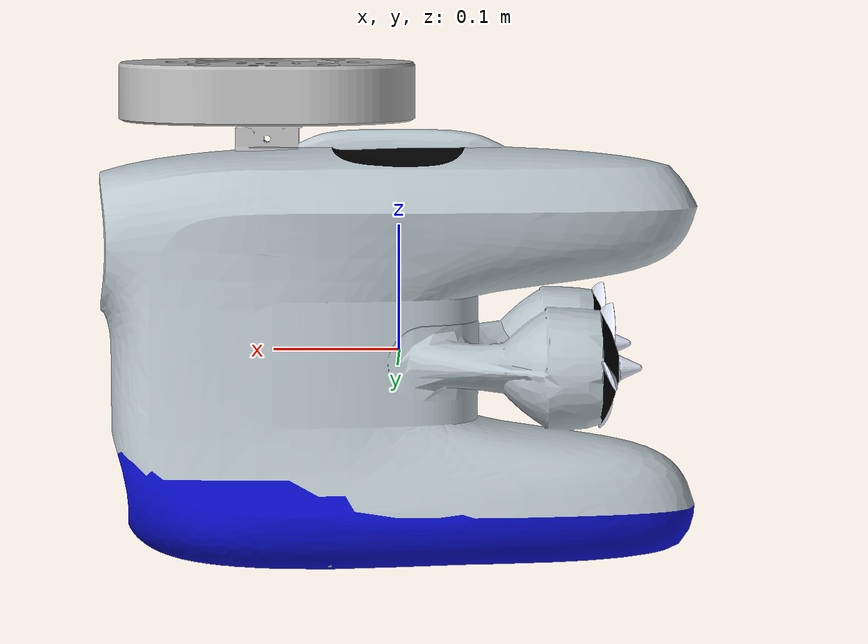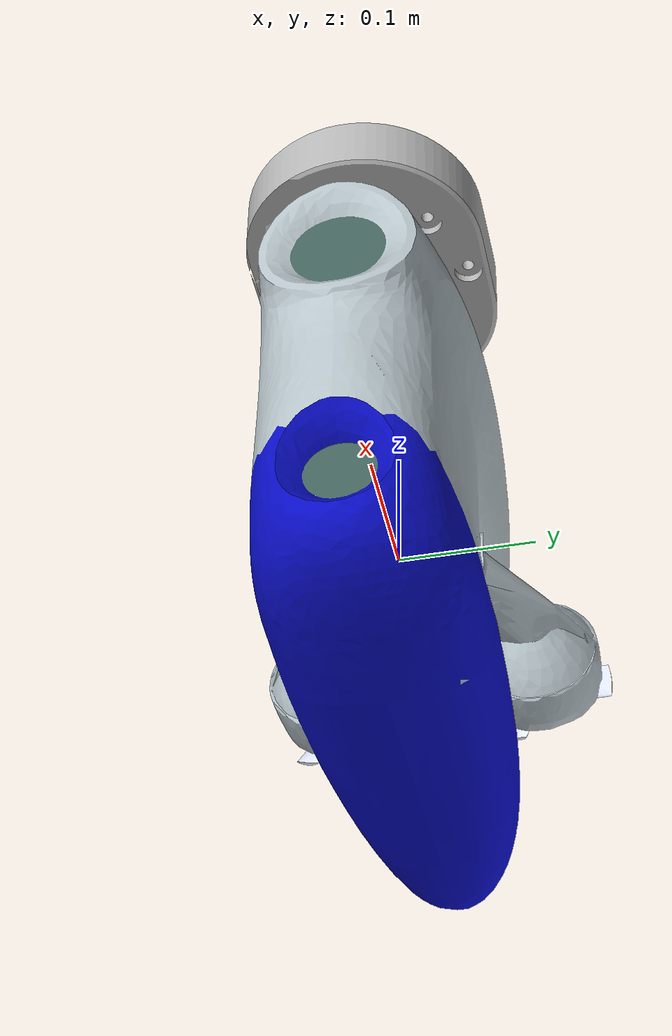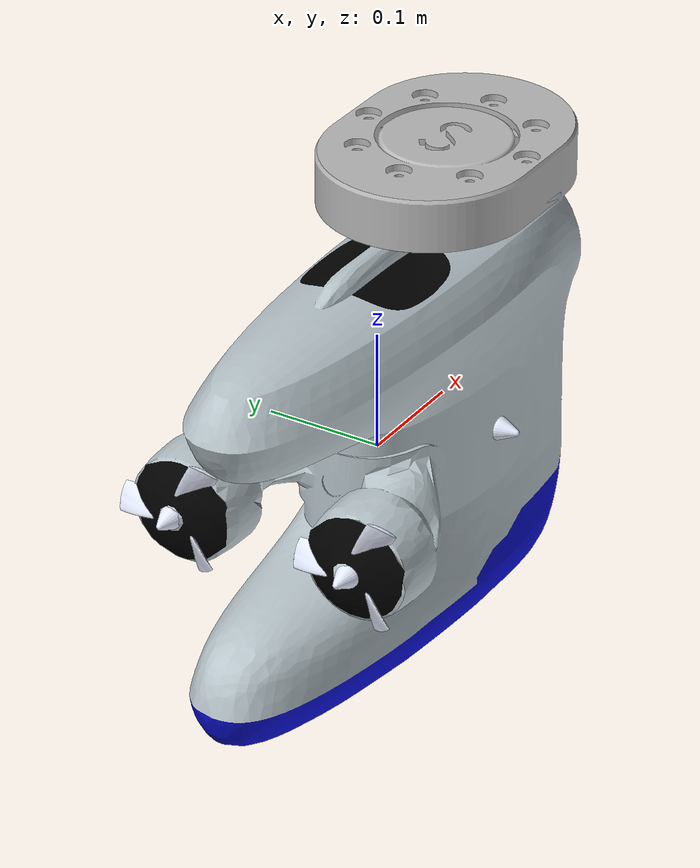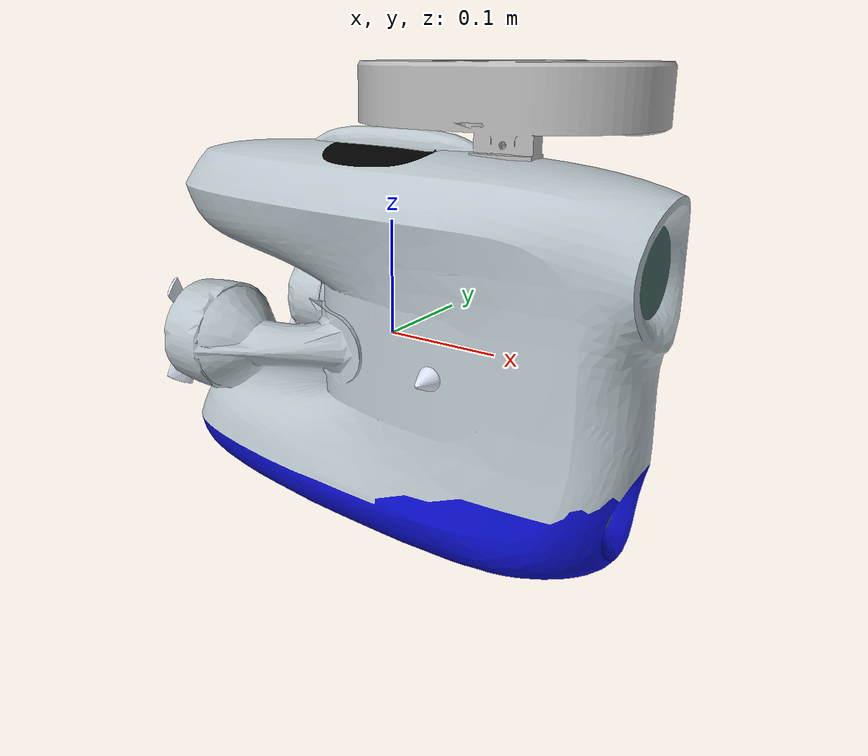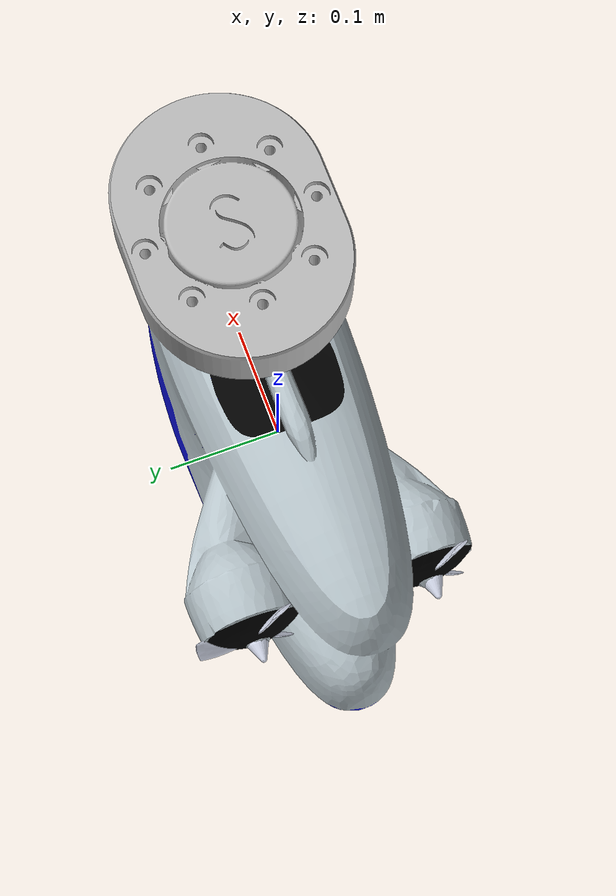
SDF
<?xml version="1.0" ?>
<sdf version="1.9">
  <model name="blueye" canonical_link="blueye_link">
    <link name="blueye_link">
      <!--Main model link-->
      <pose relative_to="__model__">0.0 0.0 0.0 0.0 0.0 0.0</pose>
      <visual name="blueye_visual">
        <pose relative_to="blueye_link">-0.31 -0.1285 -0.177 1.5707 0.0 1.5707</pose>
        <geometry>
          <mesh>
            <uri>model://models/dynamic_assets/blueye/meshes/blueye.dae</uri>
            <scale>1 1 1</scale>
          </mesh>
        </geometry>
      </visual>
      <inertial>
        <mass>8.6</mass>
        <pose>0.0 0.0 0.0 0.0 0.0 0.0</pose>
        <inertia>
          <ixx>10000</ixx>
          <ixy>0</ixy>
          <ixz>0</ixz>
          <iyy>10000</iyy>
          <iyz>0</iyz>
          <izz>100</izz>
        </inertia>
        <fluid_added_mass>
          <xx>5.2171</xx>
          <yy>19.8729</yy>
          <zz>11.2643</zz>
          <pp>0.0972</pp>
          <qq>0.1822</qq>
          <rr>0.1594</rr>
        </fluid_added_mass>
      </inertial>
      <collision name="blueye_collision">
        <!--Collision box for bouyancy-->
        <pose relative_to="blueye_link">0.0 0.0 0.1 0.0 0.0 0.0</pose>
        <geometry>
          <box>
            <size>0.409 0.205 0.1025</size>
          </box>
        </geometry>
      </collision>
    </link>
    <plugin name="gz::sim::systems::OdometryPublisher" filename="gz-sim-odometry-publisher-system">
      <!--Ground Truth Position-->
      <frame>world_flu</frame>
      <robot_base_frame>blueye_link</robot_base_frame>
      <odom_topic>blueye/odometry_flu/gt</odom_topic>
      <dimensions>3</dimensions>
    </plugin>
    <link name="blueye_light_link">
      <!--Blueye Light Link-->
      <pose relative_to="blueye_link">0.0 0.0 0.0 0.0 0.0 0.0</pose>
      <light name="blueye_light" type="spot">
        <pose>0.0 0.0 0.0 0.0 0.0 0.0</pose>
        <diffuse>1.0 1.0 1.0 1.0</diffuse>
        <specular>0.5 0.5 0.5 1.0</specular>
        <attenuation>
          <range>20.0</range>
          <constant>0.5</constant>
          <linear>1.0</linear>
          <quadratic>0.3</quadratic>
        </attenuation>
        <direction>1.0 0.0 0.0</direction>
        <cast_shadows>1</cast_shadows>
        <spot>
          <inner_angle>1.0</inner_angle>
          <outer_angle>1.0</outer_angle>
          <falloff>1.0</falloff>
        </spot>
      </light>
      <inertial>
        <mass>0.0001</mass>
      </inertial>
    </link>
    <joint name="blueye_light_joint" type="fixed">
      <!--Blueye Light Joint-->
      <child>blueye_light_link</child>
      <parent>blueye_link</parent>
    </joint>
    <link name="blueye_imu_link">
      <!--IMU Sensor Link-->
      <pose relative_to="blueye_link">0.0 0.0 0.0 0.0 0.0 0.0</pose>
      <sensor name="blueye_imu" type="imu">
        <update_rate>500</update_rate>
        <topic>/blueye/imu</topic>
        <imu>
          <linear_acceleration>
            <x>
              <noise type="gaussian">
                <mean>0.0</mean>
                <stddev>0.01</stddev>
                <bias_mean>0.0</bias_mean>
                <bias_stddev>0.0</bias_stddev>
              </noise>
            </x>
            <y>
              <noise type="gaussian">
                <mean>0.0</mean>
                <stddev>0.01</stddev>
                <bias_mean>0.0</bias_mean>
                <bias_stddev>0.0</bias_stddev>
              </noise>
            </y>
            <z>
              <noise type="gaussian">
                <mean>0.0</mean>
                <stddev>0.01</stddev>
                <bias_mean>0.0</bias_mean>
                <bias_stddev>0.0</bias_stddev>
              </noise>
            </z>
          </linear_acceleration>
          <angular_velocity>
            <x>
              <noise type="gaussian">
                <mean>0.0</mean>
                <stddev>0.01</stddev>
                <bias_mean>0.0</bias_mean>
                <bias_stddev>0.0</bias_stddev>
              </noise>
            </x>
            <y>
              <noise type="gaussian">
                <mean>0.0</mean>
                <stddev>0.01</stddev>
                <bias_mean>0.0</bias_mean>
                <bias_stddev>0.0</bias_stddev>
              </noise>
            </y>
            <z>
              <noise type="gaussian">
                <mean>0.0</mean>
                <stddev>0.01</stddev>
                <bias_mean>0.0</bias_mean>
                <bias_stddev>0.0</bias_stddev>
              </noise>
            </z>
          </angular_velocity>
        </imu>
        <always_on>1</always_on>
      </sensor>
      <inertial>
        <mass>0.0001</mass>
      </inertial>
    </link>
    <joint name="blueye_imu_joint" type="fixed">
      <!--IMU Joint-->
      <child>blueye_imu_link</child>
      <parent>blueye_link</parent>
    </joint>
    <link name="blueye_camera_1_link">
      <!--Camera 1 Link-->
      <pose relative_to="blueye_link">0.3 0.3 0.0 0.0 0.0 0.0</pose>
      <sensor name="blueye_camera_1" type="camera">
        <camera>
          <image>
            <width>1920</width>
            <height>1080</height>
          </image>
          <horizontal_fov>1.0472</horizontal_fov>
          <clip>
            <far>20.0</far>
            <near>0.1</near>
          </clip>
          <camera_info_topic>/blueye/camera_1/camera_info</camera_info_topic>
        </camera>
        <always_on>1</always_on>
        <update_rate>10</update_rate>
        <topic>/blueye/camera_1/image_raw</topic>
        <visualize>1</visualize>
      </sensor>
      <inertial>
        <mass>0.0001</mass>
      </inertial>
    </link>
    <joint name="blueye_camera_1_joint" type="fixed">
      <!--Camera 1 Joint-->
      <child>blueye_camera_1_link</child>
      <parent>blueye_link</parent>
    </joint>
    <link name="blueye_depth_camera_link">
      <!--Depth Camera Link-->
      <pose relative_to="blueye_link">0.0 0.0 0.0 0.0 0.0 0.0</pose>
      <sensor name="blueye_depth_camera" type="depth_camera">
        <camera>
          <image>
            <width>320</width>
            <height>240</height>
          </image>
          <horizontal_fov>1.0472</horizontal_fov>
          <clip>
            <far>20.0</far>
            <near>0.1</near>
          </clip>
          <camera_info_topic>/blueye/depth_camera/camera_info</camera_info_topic>
          <depth_camera>
            <output>/blueye/depth_camera/output</output>
            <clip>
              <near>0.1</near>
              <far>30.0</far>
            </clip>
          </depth_camera>
          <intrinsics/>
        </camera>
        <always_on>1</always_on>
        <update_rate>10</update_rate>
        <topic>/blueye/depth_camera/image_raw</topic>
        <visualize>1</visualize>
      </sensor>
      <inertial>
        <mass>0.0001</mass>
      </inertial>
    </link>
    <joint name="blueye_depth_camera_joint" type="fixed">
      <!--Depth Camera Joint-->
      <child>blueye_depth_camera_link</child>
      <parent>blueye_link</parent>
    </joint>
    <link name="blueye_dvl_ray_link">
      <!--DVL Ray Link-->
      <pose relative_to="blueye_link">0.0 0.0 0.0 0.0 1.5758 0.0</pose>
      <sensor name="blueye_dvl_ray" type="gpu_lidar">
        <always_on>1</always_on>
        <update_rate>10</update_rate>
        <topic>/blueye/dvl/ray</topic>
        <visualize>1</visualize>
        <ray>
          <scan>
            <horizontal>
              <samples>1</samples>
              <resolution>1</resolution>
              <min_angle>-0.1</min_angle>
              <max_angle>0.1</max_angle>
            </horizontal>
            <vertical>
              <samples>1</samples>
              <resolution>1</resolution>
              <min_angle>-0.1</min_angle>
              <max_angle>0.1</max_angle>
            </vertical>
          </scan>
          <range>
            <min>0.1</min>
            <max>30.0</max>
            <resolution>0.1</resolution>
          </range>
          <noise>
            <type>gaussian</type>
            <mean>0.0</mean>
            <stddev>0.2</stddev>
          </noise>
        </ray>
      </sensor>
      <inertial>
        <mass>0.0001</mass>
      </inertial>
    </link>
    <joint name="blueye_dvl_ray_joint" type="fixed">
      <!--DVL Ray Joint-->
      <child>blueye_dvl_ray_link</child>
      <parent>blueye_link</parent>
    </joint>
    <link name="blueye_thruster_1_link">
      <!--Thruster 1 Link-->
      <pose relative_to="blueye_link">-0.14 0.0815 -0.004 0.0 -1.5707 0.0</pose>
      <visual name="blueye_thruster_1_visual">
        <pose relative_to="blueye_link">-0.14 0.0815 -0.004 0.0 -3.1415 0.0</pose>
        <geometry>
          <mesh>
            <uri>model://models/dynamic_assets/blueye/meshes/prop.dae</uri>
            <scale>0.7 0.7 0.7</scale>
          </mesh>
        </geometry>
      </visual>
      <inertial>
        <mass>0.0001</mass>
      </inertial>
    </link>
    <joint name="blueye_thruster_1_joint" type="revolute">
      <!--Thruster 1 Joint-->
      <child>blueye_thruster_1_link</child>
      <parent>blueye_link</parent>
      <axis>
        <xyz>0 0 -1</xyz>
        <limit>
          <lower>-1e+16</lower>
          <upper>1e+16</upper>
        </limit>
      </axis>
    </joint>
    <plugin name="gz::sim::systems::Thruster" filename="gz-sim-thruster-system">
      <namespace>blueye</namespace>
      <joint_name>blueye_thruster_1_joint</joint_name>
      <fluid_density>1025</fluid_density>
      <propeller_diameter>0.2</propeller_diameter>
      <max_thrust_cmd>1200</max_thrust_cmd>
      <min_thrust_cmd>-1200</min_thrust_cmd>
    </plugin>
    <link name="blueye_thruster_2_link">
      <!--Thruster 1 Link-->
      <pose relative_to="blueye_link">-0.14 -0.0785 -0.004 0.0 -1.5707 0.0</pose>
      <visual name="blueye_thruster_2_visual">
        <pose relative_to="blueye_link">-0.14 -0.0785 -0.004 0.0 -3.1415 0.0</pose>
        <geometry>
          <mesh>
            <uri>model://models/dynamic_assets/blueye/meshes/prop.dae</uri>
            <scale>0.7 0.7 0.7</scale>
          </mesh>
        </geometry>
      </visual>
      <inertial>
        <mass>0.0001</mass>
      </inertial>
    </link>
    <joint name="blueye_thruster_2_joint" type="revolute">
      <!--Thruster 1 Joint-->
      <child>blueye_thruster_2_link</child>
      <parent>blueye_link</parent>
      <axis>
        <xyz>0 0 -1</xyz>
        <limit>
          <lower>-1e+16</lower>
          <upper>1e+16</upper>
        </limit>
      </axis>
    </joint>
    <plugin name="gz::sim::systems::Thruster" filename="gz-sim-thruster-system">
      <namespace>blueye</namespace>
      <joint_name>blueye_thruster_2_joint</joint_name>
      <fluid_density>1025</fluid_density>
      <propeller_diameter>0.2</propeller_diameter>
      <max_thrust_cmd>1200</max_thrust_cmd>
      <min_thrust_cmd>-1200</min_thrust_cmd>
    </plugin>
    <link name="blueye_thruster_3_link">
      <!--Thruster 1 Link-->
      <pose relative_to="blueye_link">0.08 -0.034 -0.004 0.0 1.57 -1.57</pose>
      <visual name="blueye_thruster_3_visual">
        <pose>0.0 0.0 0.0 0.0 -1.5707 0.0</pose>
        <geometry>
          <mesh>
            <uri>model://models/dynamic_assets/blueye/meshes/prop.dae</uri>
            <scale>0.7 0.7 0.7</scale>
          </mesh>
        </geometry>
      </visual>
      <inertial>
        <mass>0.0001</mass>
      </inertial>
    </link>
    <joint name="blueye_thruster_3_joint" type="revolute">
      <!--Thruster 1 Joint-->
      <child>blueye_thruster_3_link</child>
      <parent>blueye_link</parent>
      <axis>
        <xyz>0 0 -1</xyz>
        <limit>
          <lower>-1e+16</lower>
          <upper>1e+16</upper>
        </limit>
      </axis>
    </joint>
    <plugin name="gz::sim::systems::Thruster" filename="gz-sim-thruster-system">
      <namespace>blueye</namespace>
      <joint_name>blueye_thruster_3_joint</joint_name>
      <fluid_density>1025</fluid_density>
      <propeller_diameter>0.2</propeller_diameter>
      <max_thrust_cmd>1200</max_thrust_cmd>
      <min_thrust_cmd>-1200</min_thrust_cmd>
    </plugin>
    <link name="blueye_thruster_4_link">
      <!--Thruster 1 Link-->
      <pose relative_to="blueye_link">0.0 0.0015 0.071 0.0 0.0 3.1415</pose>
      <visual name="blueye_thruster_4_visual">
        <pose>0.0 0.0 0.0 0.0 -1.5707 0.0</pose>
        <geometry>
          <mesh>
            <uri>model://models/dynamic_assets/blueye/meshes/prop.dae</uri>
            <scale>0.7 0.7 0.7</scale>
          </mesh>
        </geometry>
      </visual>
      <inertial>
        <mass>0.0001</mass>
      </inertial>
    </link>
    <joint name="blueye_thruster_4_joint" type="revolute">
      <!--Thruster 1 Joint-->
      <child>blueye_thruster_4_link</child>
      <parent>blueye_link</parent>
      <axis>
        <xyz>0 0 -1</xyz>
        <limit>
          <lower>-1e+16</lower>
          <upper>1e+16</upper>
        </limit>
      </axis>
    </joint>
    <plugin name="gz::sim::systems::Thruster" filename="gz-sim-thruster-system">
      <namespace>blueye</namespace>
      <joint_name>blueye_thruster_4_joint</joint_name>
      <fluid_density>1025</fluid_density>
      <propeller_diameter>0.2</propeller_diameter>
      <max_thrust_cmd>1200</max_thrust_cmd>
      <min_thrust_cmd>-1200</min_thrust_cmd>
    </plugin>
    <plugin name="gz::sim::systems::Hydrodynamics" filename="gz-sim-hydrodynamics-system">
      <!--Hydrodynamic Plugin-->
      <link_name>
        blueye_link
        <!--Linear Damping-->
      </link_name>
      <xU>-1.8430</xU>
      <yV>-3.1802</yV>
      <zW>-0.3778</zW>
      <kP>-0.868</kP>
      <mQ>-0.868</mQ>
      <nR>
        -0.868
        <!--Quadratic Damping-->
      </nR>
      <xUabsU>-9.4873</xUabsU>
      <yVabsV>-45.7127</yVabsV>
      <zWabsW>-25.4825</zWabsW>
      <kPabsP>-1.5344</kPabsP>
      <mQabsQ>-1.5344</mQabsQ>
      <nRabsR>-1.5344</nRabsR>
    </plugin>
  </model>
</sdf>
